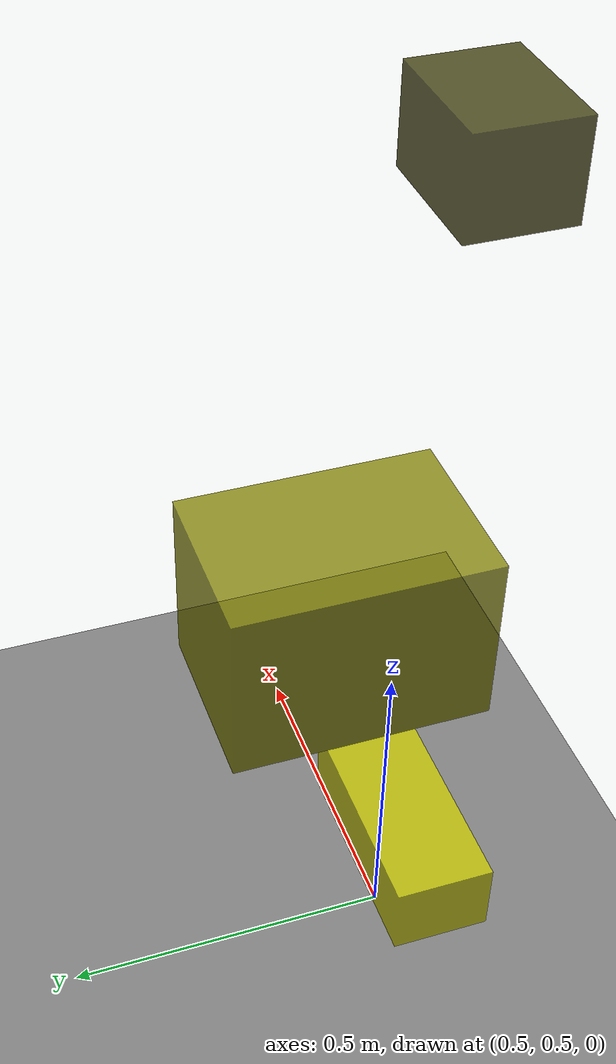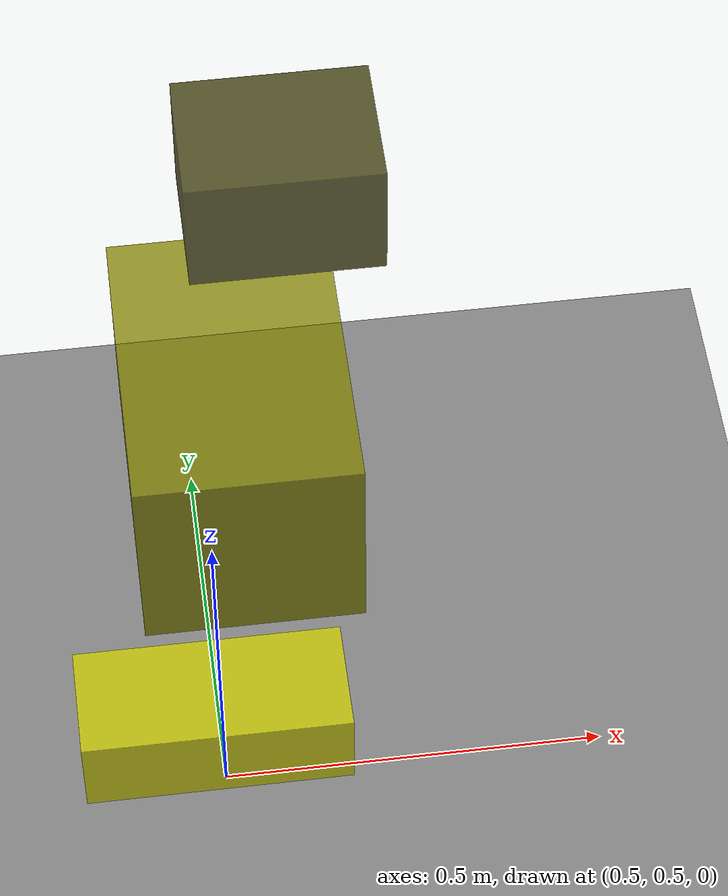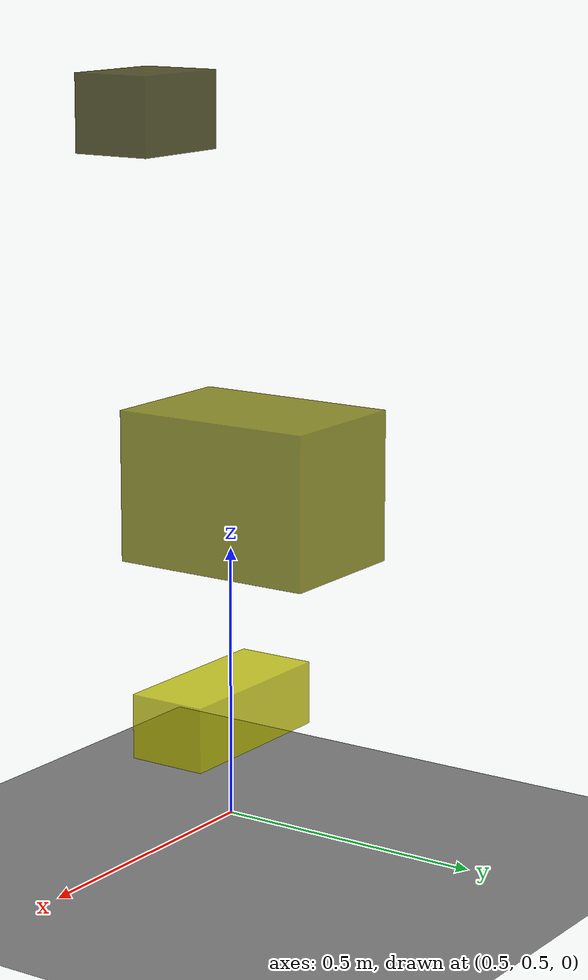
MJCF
<?xml version="1.0"?>
<mujoco model="obstacle_scene">
  <compiler angle="radian" coordinate="local"/>
  <option timestep="0.001" gravity="0 0 -9.81"/>

  <asset>
    <material name="obstacle_mat" rgba="0.8 0.8 0.0 0.8"/>
    <material name="ground_mat" rgba="0.5 0.5 0.5 1"/>
  </asset>

  <worldbody>
    <!-- Ground plane -->
    <geom name="ground" type="plane" size="3 3 0.1" material="ground_mat"/>

    <!-- Obstacles -->
    <body name="obstacle_0" pos="0.587058 0.386925 1.278627">
      <geom name="obs_0" type="box" size="0.100820 0.075092 0.068566" rgba="0.2 0.2 0.0 0.8"/>
    </body>
    <body name="obstacle_1" pos="0.541521 0.577990 0.632974">
      <geom name="obs_1" type="box" size="0.132005 0.189095 0.135427" rgba="0.5 0.5 0.0 0.8"/>
    </body>
    <body name="obstacle_2" pos="0.487710 0.472308 0.190052">
      <geom name="obs_2" type="box" size="0.171293 0.074333 0.059580" rgba="0.8 0.8 0.0 0.8"/>
    </body>
  </worldbody>
</mujoco>
